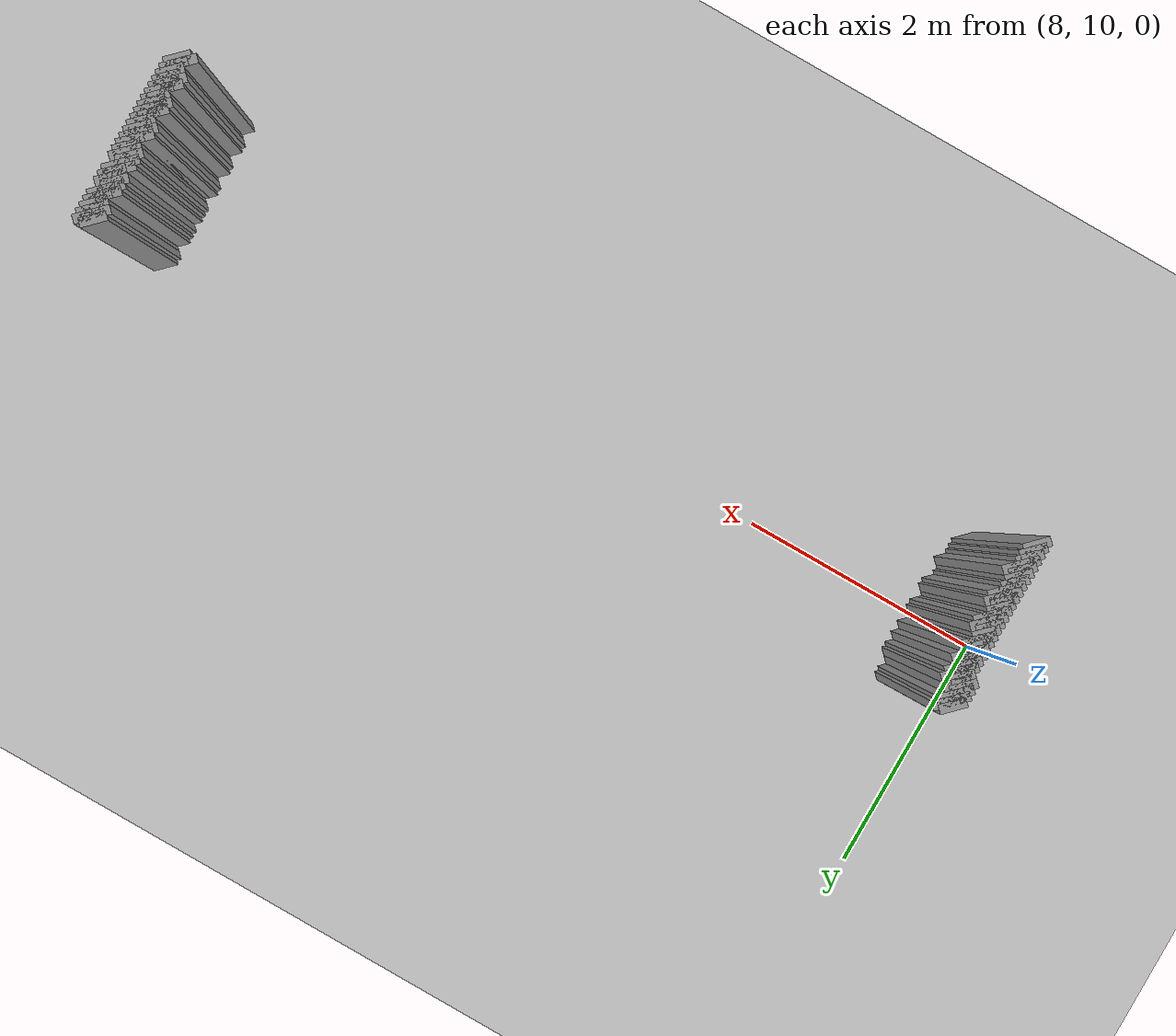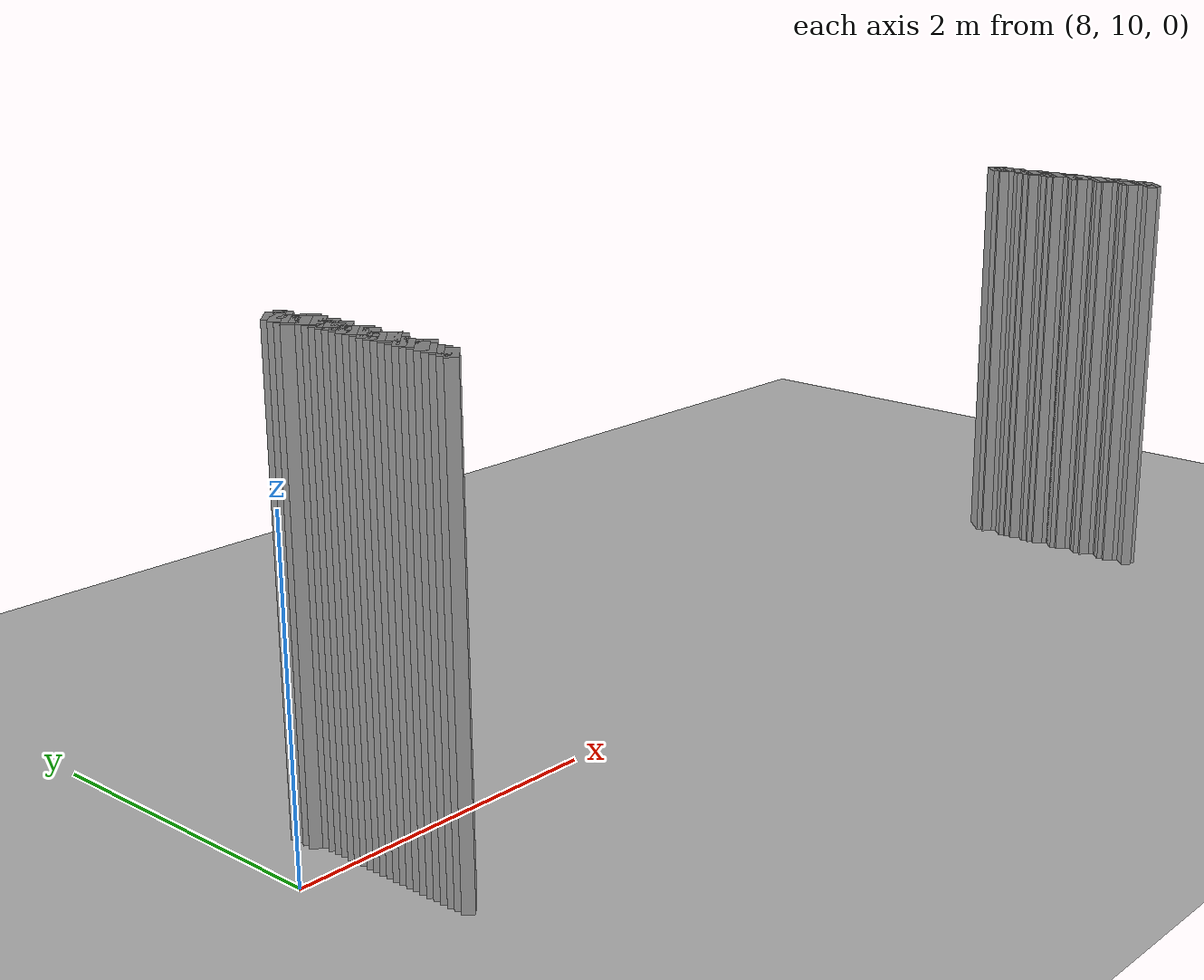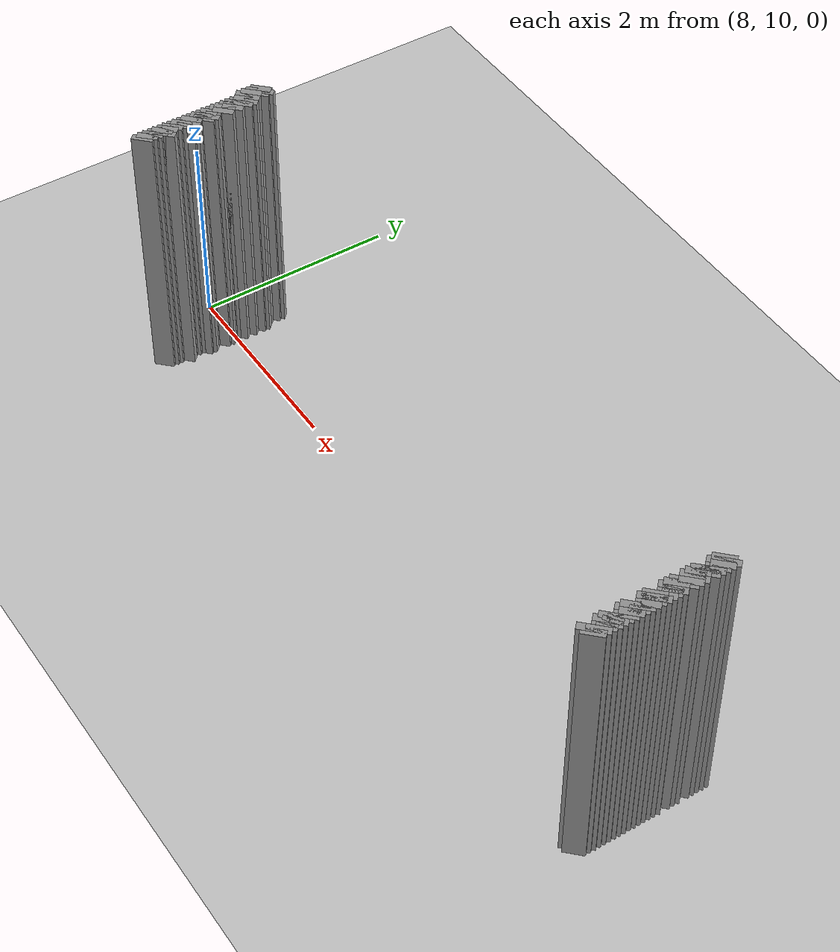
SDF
<sdf version="1.5">
 <world name="default">
  <include><uri>model://ground_plane</uri></include>
  <include><uri>model://sun</uri></include>
  <model name="grey_wall_1012">
   <static>1</static>
   <link name="link">
    <pose>15.2 10.55  1.4 0 0 -0.785398163397</pose>
    <collision name="collision"><geometry><box><size>0.0707106781187 .2  2.8</size></box></geometry></collision>
    <visual name="visual">
     <cast_shadows>0</cast_shadows>
     <geometry><box><size>0.0707106781187 .2  2.8</size></box></geometry>
     <material>
      <script>
       <uri>model://grey_wall/materials/scripts</uri>
       <uri>model://grey_wall/materials/textures</uri>
       <name>vrc/grey_wall</name>
      </script>
     </material>
    </visual>
   </link>
  </model>
  <model name="grey_wall_1013">
   <static>1</static>
   <link name="link">
    <pose>15.25 10.55  1.4 0 0 -0.785398163397</pose>
    <collision name="collision"><geometry><box><size>0.0707106781187 .2  2.8</size></box></geometry></collision>
    <visual name="visual">
     <cast_shadows>0</cast_shadows>
     <geometry><box><size>0.0707106781187 .2  2.8</size></box></geometry>
     <material>
      <script>
       <uri>model://grey_wall/materials/scripts</uri>
       <uri>model://grey_wall/materials/textures</uri>
       <name>vrc/grey_wall</name>
      </script>
     </material>
    </visual>
   </link>
  </model>
  <model name="grey_wall_1014">
   <static>1</static>
   <link name="link">
    <pose>8.4 10.5  1.4 0 0 -0.785398163397</pose>
    <collision name="collision"><geometry><box><size>0.0707106781187 .2  2.8</size></box></geometry></collision>
    <visual name="visual">
     <cast_shadows>0</cast_shadows>
     <geometry><box><size>0.0707106781187 .2  2.8</size></box></geometry>
     <material>
      <script>
       <uri>model://grey_wall/materials/scripts</uri>
       <uri>model://grey_wall/materials/textures</uri>
       <name>vrc/grey_wall</name>
      </script>
     </material>
    </visual>
   </link>
  </model>
  <model name="grey_wall_1015">
   <static>1</static>
   <link name="link">
    <pose>8.45 10.5  1.4 0 0 -0.785398163397</pose>
    <collision name="collision"><geometry><box><size>0.0707106781187 .2  2.8</size></box></geometry></collision>
    <visual name="visual">
     <cast_shadows>0</cast_shadows>
     <geometry><box><size>0.0707106781187 .2  2.8</size></box></geometry>
     <material>
      <script>
       <uri>model://grey_wall/materials/scripts</uri>
       <uri>model://grey_wall/materials/textures</uri>
       <name>vrc/grey_wall</name>
      </script>
     </material>
    </visual>
   </link>
  </model>
  <model name="grey_wall_1016">
   <static>1</static>
   <link name="link">
    <pose>15.2 10.5  1.4 0 0 -0.785398163397</pose>
    <collision name="collision"><geometry><box><size>0.0707106781187 .2  2.8</size></box></geometry></collision>
    <visual name="visual">
     <cast_shadows>0</cast_shadows>
     <geometry><box><size>0.0707106781187 .2  2.8</size></box></geometry>
     <material>
      <script>
       <uri>model://grey_wall/materials/scripts</uri>
       <uri>model://grey_wall/materials/textures</uri>
       <name>vrc/grey_wall</name>
      </script>
     </material>
    </visual>
   </link>
  </model>
  <model name="grey_wall_1017">
   <static>1</static>
   <link name="link">
    <pose>15.25 10.5  1.4 0 0 -0.785398163397</pose>
    <collision name="collision"><geometry><box><size>0.0707106781187 .2  2.8</size></box></geometry></collision>
    <visual name="visual">
     <cast_shadows>0</cast_shadows>
     <geometry><box><size>0.0707106781187 .2  2.8</size></box></geometry>
     <material>
      <script>
       <uri>model://grey_wall/materials/scripts</uri>
       <uri>model://grey_wall/materials/textures</uri>
       <name>vrc/grey_wall</name>
      </script>
     </material>
    </visual>
   </link>
  </model>
  <model name="grey_wall_1018">
   <static>1</static>
   <link name="link">
    <pose>8.4 10.45  1.4 0 0 -0.785398163397</pose>
    <collision name="collision"><geometry><box><size>0.0707106781187 .2  2.8</size></box></geometry></collision>
    <visual name="visual">
     <cast_shadows>0</cast_shadows>
     <geometry><box><size>0.0707106781187 .2  2.8</size></box></geometry>
     <material>
      <script>
       <uri>model://grey_wall/materials/scripts</uri>
       <uri>model://grey_wall/materials/textures</uri>
       <name>vrc/grey_wall</name>
      </script>
     </material>
    </visual>
   </link>
  </model>
  <model name="grey_wall_1019">
   <static>1</static>
   <link name="link">
    <pose>8.45 10.45  1.4 0 0 -0.785398163397</pose>
    <collision name="collision"><geometry><box><size>0.0707106781187 .2  2.8</size></box></geometry></collision>
    <visual name="visual">
     <cast_shadows>0</cast_shadows>
     <geometry><box><size>0.0707106781187 .2  2.8</size></box></geometry>
     <material>
      <script>
       <uri>model://grey_wall/materials/scripts</uri>
       <uri>model://grey_wall/materials/textures</uri>
       <name>vrc/grey_wall</name>
      </script>
     </material>
    </visual>
   </link>
  </model>
  <model name="grey_wall_1020">
   <static>1</static>
   <link name="link">
    <pose>15.25 10.45  1.4 0 0 -0.785398163397</pose>
    <collision name="collision"><geometry><box><size>0.0707106781187 .2  2.8</size></box></geometry></collision>
    <visual name="visual">
     <cast_shadows>0</cast_shadows>
     <geometry><box><size>0.0707106781187 .2  2.8</size></box></geometry>
     <material>
      <script>
       <uri>model://grey_wall/materials/scripts</uri>
       <uri>model://grey_wall/materials/textures</uri>
       <name>vrc/grey_wall</name>
      </script>
     </material>
    </visual>
   </link>
  </model>
  <model name="grey_wall_1021">
   <static>1</static>
   <link name="link">
    <pose>8.4 10.4  1.4 0 0 -0.785398163397</pose>
    <collision name="collision"><geometry><box><size>0.0707106781187 .2  2.8</size></box></geometry></collision>
    <visual name="visual">
     <cast_shadows>0</cast_shadows>
     <geometry><box><size>0.0707106781187 .2  2.8</size></box></geometry>
     <material>
      <script>
       <uri>model://grey_wall/materials/scripts</uri>
       <uri>model://grey_wall/materials/textures</uri>
       <name>vrc/grey_wall</name>
      </script>
     </material>
    </visual>
   </link>
  </model>
  <model name="grey_wall_1022">
   <static>1</static>
   <link name="link">
    <pose>15.25 10.4  1.4 0 0 -0.785398163397</pose>
    <collision name="collision"><geometry><box><size>0.0707106781187 .2  2.8</size></box></geometry></collision>
    <visual name="visual">
     <cast_shadows>0</cast_shadows>
     <geometry><box><size>0.0707106781187 .2  2.8</size></box></geometry>
     <material>
      <script>
       <uri>model://grey_wall/materials/scripts</uri>
       <uri>model://grey_wall/materials/textures</uri>
       <name>vrc/grey_wall</name>
      </script>
     </material>
    </visual>
   </link>
  </model>
  <model name="grey_wall_1023">
   <static>1</static>
   <link name="link">
    <pose>8.4 10.35  1.4 0 0 -0.785398163397</pose>
    <collision name="collision"><geometry><box><size>0.0707106781187 .2  2.8</size></box></geometry></collision>
    <visual name="visual">
     <cast_shadows>0</cast_shadows>
     <geometry><box><size>0.0707106781187 .2  2.8</size></box></geometry>
     <material>
      <script>
       <uri>model://grey_wall/materials/scripts</uri>
       <uri>model://grey_wall/materials/textures</uri>
       <name>vrc/grey_wall</name>
      </script>
     </material>
    </visual>
   </link>
  </model>
  <model name="grey_wall_1024">
   <static>1</static>
   <link name="link">
    <pose>8.45 10.35  1.4 0 0 -0.785398163397</pose>
    <collision name="collision"><geometry><box><size>0.0707106781187 .2  2.8</size></box></geometry></collision>
    <visual name="visual">
     <cast_shadows>0</cast_shadows>
     <geometry><box><size>0.0707106781187 .2  2.8</size></box></geometry>
     <material>
      <script>
       <uri>model://grey_wall/materials/scripts</uri>
       <uri>model://grey_wall/materials/textures</uri>
       <name>vrc/grey_wall</name>
      </script>
     </material>
    </visual>
   </link>
  </model>
  <model name="grey_wall_1025">
   <static>1</static>
   <link name="link">
    <pose>15.2 10.35  1.4 0 0 -0.785398163397</pose>
    <collision name="collision"><geometry><box><size>0.0707106781187 .2  2.8</size></box></geometry></collision>
    <visual name="visual">
     <cast_shadows>0</cast_shadows>
     <geometry><box><size>0.0707106781187 .2  2.8</size></box></geometry>
     <material>
      <script>
       <uri>model://grey_wall/materials/scripts</uri>
       <uri>model://grey_wall/materials/textures</uri>
       <name>vrc/grey_wall</name>
      </script>
     </material>
    </visual>
   </link>
  </model>
  <model name="grey_wall_1026">
   <static>1</static>
   <link name="link">
    <pose>15.25 10.35  1.4 0 0 -0.785398163397</pose>
    <collision name="collision"><geometry><box><size>0.0707106781187 .2  2.8</size></box></geometry></collision>
    <visual name="visual">
     <cast_shadows>0</cast_shadows>
     <geometry><box><size>0.0707106781187 .2  2.8</size></box></geometry>
     <material>
      <script>
       <uri>model://grey_wall/materials/scripts</uri>
       <uri>model://grey_wall/materials/textures</uri>
       <name>vrc/grey_wall</name>
      </script>
     </material>
    </visual>
   </link>
  </model>
  <model name="grey_wall_1027">
   <static>1</static>
   <link name="link">
    <pose>8.45 10.3  1.4 0 0 -0.785398163397</pose>
    <collision name="collision"><geometry><box><size>0.0707106781187 .2  2.8</size></box></geometry></collision>
    <visual name="visual">
     <cast_shadows>0</cast_shadows>
     <geometry><box><size>0.0707106781187 .2  2.8</size></box></geometry>
     <material>
      <script>
       <uri>model://grey_wall/materials/scripts</uri>
       <uri>model://grey_wall/materials/textures</uri>
       <name>vrc/grey_wall</name>
      </script>
     </material>
    </visual>
   </link>
  </model>
  <model name="grey_wall_1028">
   <static>1</static>
   <link name="link">
    <pose>8.5 10.3  1.4 0 0 -0.785398163397</pose>
    <collision name="collision"><geometry><box><size>0.0707106781187 .2  2.8</size></box></geometry></collision>
    <visual name="visual">
     <cast_shadows>0</cast_shadows>
     <geometry><box><size>0.0707106781187 .2  2.8</size></box></geometry>
     <material>
      <script>
       <uri>model://grey_wall/materials/scripts</uri>
       <uri>model://grey_wall/materials/textures</uri>
       <name>vrc/grey_wall</name>
      </script>
     </material>
    </visual>
   </link>
  </model>
  <model name="grey_wall_1029">
   <static>1</static>
   <link name="link">
    <pose>15.2 10.3  1.4 0 0 -0.785398163397</pose>
    <collision name="collision"><geometry><box><size>0.0707106781187 .2  2.8</size></box></geometry></collision>
    <visual name="visual">
     <cast_shadows>0</cast_shadows>
     <geometry><box><size>0.0707106781187 .2  2.8</size></box></geometry>
     <material>
      <script>
       <uri>model://grey_wall/materials/scripts</uri>
       <uri>model://grey_wall/materials/textures</uri>
       <name>vrc/grey_wall</name>
      </script>
     </material>
    </visual>
   </link>
  </model>
  <model name="grey_wall_1030">
   <static>1</static>
   <link name="link">
    <pose>8.45 10.25  1.4 0 0 -0.785398163397</pose>
    <collision name="collision"><geometry><box><size>0.0707106781187 .2  2.8</size></box></geometry></collision>
    <visual name="visual">
     <cast_shadows>0</cast_shadows>
     <geometry><box><size>0.0707106781187 .2  2.8</size></box></geometry>
     <material>
      <script>
       <uri>model://grey_wall/materials/scripts</uri>
       <uri>model://grey_wall/materials/textures</uri>
       <name>vrc/grey_wall</name>
      </script>
     </material>
    </visual>
   </link>
  </model>
  <model name="grey_wall_1031">
   <static>1</static>
   <link name="link">
    <pose>8.5 10.25  1.4 0 0 -0.785398163397</pose>
    <collision name="collision"><geometry><box><size>0.0707106781187 .2  2.8</size></box></geometry></collision>
    <visual name="visual">
     <cast_shadows>0</cast_shadows>
     <geometry><box><size>0.0707106781187 .2  2.8</size></box></geometry>
     <material>
      <script>
       <uri>model://grey_wall/materials/scripts</uri>
       <uri>model://grey_wall/materials/textures</uri>
       <name>vrc/grey_wall</name>
      </script>
     </material>
    </visual>
   </link>
  </model>
  <model name="grey_wall_1032">
   <static>1</static>
   <link name="link">
    <pose>15.2 10.25  1.4 0 0 -0.785398163397</pose>
    <collision name="collision"><geometry><box><size>0.0707106781187 .2  2.8</size></box></geometry></collision>
    <visual name="visual">
     <cast_shadows>0</cast_shadows>
     <geometry><box><size>0.0707106781187 .2  2.8</size></box></geometry>
     <material>
      <script>
       <uri>model://grey_wall/materials/scripts</uri>
       <uri>model://grey_wall/materials/textures</uri>
       <name>vrc/grey_wall</name>
      </script>
     </material>
    </visual>
   </link>
  </model>
  <model name="grey_wall_1033">
   <static>1</static>
   <link name="link">
    <pose>15.25 10.25  1.4 0 0 -0.785398163397</pose>
    <collision name="collision"><geometry><box><size>0.0707106781187 .2  2.8</size></box></geometry></collision>
    <visual name="visual">
     <cast_shadows>0</cast_shadows>
     <geometry><box><size>0.0707106781187 .2  2.8</size></box></geometry>
     <material>
      <script>
       <uri>model://grey_wall/materials/scripts</uri>
       <uri>model://grey_wall/materials/textures</uri>
       <name>vrc/grey_wall</name>
      </script>
     </material>
    </visual>
   </link>
  </model>
  <model name="grey_wall_1034">
   <static>1</static>
   <link name="link">
    <pose>8.45 10.2  1.4 0 0 -0.785398163397</pose>
    <collision name="collision"><geometry><box><size>0.0707106781187 .2  2.8</size></box></geometry></collision>
    <visual name="visual">
     <cast_shadows>0</cast_shadows>
     <geometry><box><size>0.0707106781187 .2  2.8</size></box></geometry>
     <material>
      <script>
       <uri>model://grey_wall/materials/scripts</uri>
       <uri>model://grey_wall/materials/textures</uri>
       <name>vrc/grey_wall</name>
      </script>
     </material>
    </visual>
   </link>
  </model>
  <model name="grey_wall_1035">
   <static>1</static>
   <link name="link">
    <pose>15.25 10.2  1.4 0 0 -0.785398163397</pose>
    <collision name="collision"><geometry><box><size>0.0707106781187 .2  2.8</size></box></geometry></collision>
    <visual name="visual">
     <cast_shadows>0</cast_shadows>
     <geometry><box><size>0.0707106781187 .2  2.8</size></box></geometry>
     <material>
      <script>
       <uri>model://grey_wall/materials/scripts</uri>
       <uri>model://grey_wall/materials/textures</uri>
       <name>vrc/grey_wall</name>
      </script>
     </material>
    </visual>
   </link>
  </model>
  <model name="grey_wall_1036">
   <static>1</static>
   <link name="link">
    <pose>8.45 10.15  1.4 0 0 -0.785398163397</pose>
    <collision name="collision"><geometry><box><size>0.0707106781187 .2  2.8</size></box></geometry></collision>
    <visual name="visual">
     <cast_shadows>0</cast_shadows>
     <geometry><box><size>0.0707106781187 .2  2.8</size></box></geometry>
     <material>
      <script>
       <uri>model://grey_wall/materials/scripts</uri>
       <uri>model://grey_wall/materials/textures</uri>
       <name>vrc/grey_wall</name>
      </script>
     </material>
    </visual>
   </link>
  </model>
  <model name="grey_wall_1037">
   <static>1</static>
   <link name="link">
    <pose>8.5 10.15  1.4 0 0 -0.785398163397</pose>
    <collision name="collision"><geometry><box><size>0.0707106781187 .2  2.8</size></box></geometry></collision>
    <visual name="visual">
     <cast_shadows>0</cast_shadows>
     <geometry><box><size>0.0707106781187 .2  2.8</size></box></geometry>
     <material>
      <script>
       <uri>model://grey_wall/materials/scripts</uri>
       <uri>model://grey_wall/materials/textures</uri>
       <name>vrc/grey_wall</name>
      </script>
     </material>
    </visual>
   </link>
  </model>
  <model name="grey_wall_1038">
   <static>1</static>
   <link name="link">
    <pose>15.2 10.15  1.4 0 0 -0.785398163397</pose>
    <collision name="collision"><geometry><box><size>0.0707106781187 .2  2.8</size></box></geometry></collision>
    <visual name="visual">
     <cast_shadows>0</cast_shadows>
     <geometry><box><size>0.0707106781187 .2  2.8</size></box></geometry>
     <material>
      <script>
       <uri>model://grey_wall/materials/scripts</uri>
       <uri>model://grey_wall/materials/textures</uri>
       <name>vrc/grey_wall</name>
      </script>
     </material>
    </visual>
   </link>
  </model>
  <model name="grey_wall_1039">
   <static>1</static>
   <link name="link">
    <pose>15.25 10.15  1.4 0 0 -0.785398163397</pose>
    <collision name="collision"><geometry><box><size>0.0707106781187 .2  2.8</size></box></geometry></collision>
    <visual name="visual">
     <cast_shadows>0</cast_shadows>
     <geometry><box><size>0.0707106781187 .2  2.8</size></box></geometry>
     <material>
      <script>
       <uri>model://grey_wall/materials/scripts</uri>
       <uri>model://grey_wall/materials/textures</uri>
       <name>vrc/grey_wall</name>
      </script>
     </material>
    </visual>
   </link>
  </model>
  <model name="grey_wall_1040">
   <static>1</static>
   <link name="link">
    <pose>8.45 10.1  1.4 0 0 -0.785398163397</pose>
    <collision name="collision"><geometry><box><size>0.0707106781187 .2  2.8</size></box></geometry></collision>
    <visual name="visual">
     <cast_shadows>0</cast_shadows>
     <geometry><box><size>0.0707106781187 .2  2.8</size></box></geometry>
     <material>
      <script>
       <uri>model://grey_wall/materials/scripts</uri>
       <uri>model://grey_wall/materials/textures</uri>
       <name>vrc/grey_wall</name>
      </script>
     </material>
    </visual>
   </link>
  </model>
  <model name="grey_wall_1041">
   <static>1</static>
   <link name="link">
    <pose>15.2 10.1  1.4 0 0 -0.785398163397</pose>
    <collision name="collision"><geometry><box><size>0.0707106781187 .2  2.8</size></box></geometry></collision>
    <visual name="visual">
     <cast_shadows>0</cast_shadows>
     <geometry><box><size>0.0707106781187 .2  2.8</size></box></geometry>
     <material>
      <script>
       <uri>model://grey_wall/materials/scripts</uri>
       <uri>model://grey_wall/materials/textures</uri>
       <name>vrc/grey_wall</name>
      </script>
     </material>
    </visual>
   </link>
  </model>
  <model name="grey_wall_1042">
   <static>1</static>
   <link name="link">
    <pose>8.45 10.05  1.4 0 0 -0.785398163397</pose>
    <collision name="collision"><geometry><box><size>0.0707106781187 .2  2.8</size></box></geometry></collision>
    <visual name="visual">
     <cast_shadows>0</cast_shadows>
     <geometry><box><size>0.0707106781187 .2  2.8</size></box></geometry>
     <material>
      <script>
       <uri>model://grey_wall/materials/scripts</uri>
       <uri>model://grey_wall/materials/textures</uri>
       <name>vrc/grey_wall</name>
      </script>
     </material>
    </visual>
   </link>
  </model>
  <model name="grey_wall_1043">
   <static>1</static>
   <link name="link">
    <pose>8.5 10.05  1.4 0 0 -0.785398163397</pose>
    <collision name="collision"><geometry><box><size>0.0707106781187 .2  2.8</size></box></geometry></collision>
    <visual name="visual">
     <cast_shadows>0</cast_shadows>
     <geometry><box><size>0.0707106781187 .2  2.8</size></box></geometry>
     <material>
      <script>
       <uri>model://grey_wall/materials/scripts</uri>
       <uri>model://grey_wall/materials/textures</uri>
       <name>vrc/grey_wall</name>
      </script>
     </material>
    </visual>
   </link>
  </model>
  <model name="grey_wall_1044">
   <static>1</static>
   <link name="link">
    <pose>15.2 10.05  1.4 0 0 -0.785398163397</pose>
    <collision name="collision"><geometry><box><size>0.0707106781187 .2  2.8</size></box></geometry></collision>
    <visual name="visual">
     <cast_shadows>0</cast_shadows>
     <geometry><box><size>0.0707106781187 .2  2.8</size></box></geometry>
     <material>
      <script>
       <uri>model://grey_wall/materials/scripts</uri>
       <uri>model://grey_wall/materials/textures</uri>
       <name>vrc/grey_wall</name>
      </script>
     </material>
    </visual>
   </link>
  </model>
  <model name="grey_wall_1045">
   <static>1</static>
   <link name="link">
    <pose>15.25 10.05  1.4 0 0 -0.785398163397</pose>
    <collision name="collision"><geometry><box><size>0.0707106781187 .2  2.8</size></box></geometry></collision>
    <visual name="visual">
     <cast_shadows>0</cast_shadows>
     <geometry><box><size>0.0707106781187 .2  2.8</size></box></geometry>
     <material>
      <script>
       <uri>model://grey_wall/materials/scripts</uri>
       <uri>model://grey_wall/materials/textures</uri>
       <name>vrc/grey_wall</name>
      </script>
     </material>
    </visual>
   </link>
  </model>
  <model name="grey_wall_1046">
   <static>1</static>
   <link name="link">
    <pose>8.45 10.0  1.4 0 0 -0.785398163397</pose>
    <collision name="collision"><geometry><box><size>0.0707106781187 .2  2.8</size></box></geometry></collision>
    <visual name="visual">
     <cast_shadows>0</cast_shadows>
     <geometry><box><size>0.0707106781187 .2  2.8</size></box></geometry>
     <material>
      <script>
       <uri>model://grey_wall/materials/scripts</uri>
       <uri>model://grey_wall/materials/textures</uri>
       <name>vrc/grey_wall</name>
      </script>
     </material>
    </visual>
   </link>
  </model>
  <model name="grey_wall_1047">
   <static>1</static>
   <link name="link">
    <pose>15.25 10.0  1.4 0 0 -0.785398163397</pose>
    <collision name="collision"><geometry><box><size>0.0707106781187 .2  2.8</size></box></geometry></collision>
    <visual name="visual">
     <cast_shadows>0</cast_shadows>
     <geometry><box><size>0.0707106781187 .2  2.8</size></box></geometry>
     <material>
      <script>
       <uri>model://grey_wall/materials/scripts</uri>
       <uri>model://grey_wall/materials/textures</uri>
       <name>vrc/grey_wall</name>
      </script>
     </material>
    </visual>
   </link>
  </model>
  <model name="grey_wall_1048">
   <static>1</static>
   <link name="link">
    <pose>8.45 9.95  1.4 0 0 -0.785398163397</pose>
    <collision name="collision"><geometry><box><size>0.0707106781187 .2  2.8</size></box></geometry></collision>
    <visual name="visual">
     <cast_shadows>0</cast_shadows>
     <geometry><box><size>0.0707106781187 .2  2.8</size></box></geometry>
     <material>
      <script>
       <uri>model://grey_wall/materials/scripts</uri>
       <uri>model://grey_wall/materials/textures</uri>
       <name>vrc/grey_wall</name>
      </script>
     </material>
    </visual>
   </link>
  </model>
  <model name="grey_wall_1049">
   <static>1</static>
   <link name="link">
    <pose>15.25 9.95  1.4 0 0 -0.785398163397</pose>
    <collision name="collision"><geometry><box><size>0.0707106781187 .2  2.8</size></box></geometry></collision>
    <visual name="visual">
     <cast_shadows>0</cast_shadows>
     <geometry><box><size>0.0707106781187 .2  2.8</size></box></geometry>
     <material>
      <script>
       <uri>model://grey_wall/materials/scripts</uri>
       <uri>model://grey_wall/materials/textures</uri>
       <name>vrc/grey_wall</name>
      </script>
     </material>
    </visual>
   </link>
  </model>
  <model name="grey_wall_1050">
   <static>1</static>
   <link name="link">
    <pose>8.45 9.9  1.4 0 0 -0.785398163397</pose>
    <collision name="collision"><geometry><box><size>0.0707106781187 .2  2.8</size></box></geometry></collision>
    <visual name="visual">
     <cast_shadows>0</cast_shadows>
     <geometry><box><size>0.0707106781187 .2  2.8</size></box></geometry>
     <material>
      <script>
       <uri>model://grey_wall/materials/scripts</uri>
       <uri>model://grey_wall/materials/textures</uri>
       <name>vrc/grey_wall</name>
      </script>
     </material>
    </visual>
   </link>
  </model>
  <model name="grey_wall_1051">
   <static>1</static>
   <link name="link">
    <pose>8.5 9.9  1.4 0 0 -0.785398163397</pose>
    <collision name="collision"><geometry><box><size>0.0707106781187 .2  2.8</size></box></geometry></collision>
    <visual name="visual">
     <cast_shadows>0</cast_shadows>
     <geometry><box><size>0.0707106781187 .2  2.8</size></box></geometry>
     <material>
      <script>
       <uri>model://grey_wall/materials/scripts</uri>
       <uri>model://grey_wall/materials/textures</uri>
       <name>vrc/grey_wall</name>
      </script>
     </material>
    </visual>
   </link>
  </model>
  <model name="grey_wall_1052">
   <static>1</static>
   <link name="link">
    <pose>15.2 9.9  1.4 0 0 -0.785398163397</pose>
    <collision name="collision"><geometry><box><size>0.0707106781187 .2  2.8</size></box></geometry></collision>
    <visual name="visual">
     <cast_shadows>0</cast_shadows>
     <geometry><box><size>0.0707106781187 .2  2.8</size></box></geometry>
     <material>
      <script>
       <uri>model://grey_wall/materials/scripts</uri>
       <uri>model://grey_wall/materials/textures</uri>
       <name>vrc/grey_wall</name>
      </script>
     </material>
    </visual>
   </link>
  </model>
  <model name="grey_wall_1053">
   <static>1</static>
   <link name="link">
    <pose>15.25 9.9  1.4 0 0 -0.785398163397</pose>
    <collision name="collision"><geometry><box><size>0.0707106781187 .2  2.8</size></box></geometry></collision>
    <visual name="visual">
     <cast_shadows>0</cast_shadows>
     <geometry><box><size>0.0707106781187 .2  2.8</size></box></geometry>
     <material>
      <script>
       <uri>model://grey_wall/materials/scripts</uri>
       <uri>model://grey_wall/materials/textures</uri>
       <name>vrc/grey_wall</name>
      </script>
     </material>
    </visual>
   </link>
  </model>
  <model name="grey_wall_1054">
   <static>1</static>
   <link name="link">
    <pose>8.45 9.85  1.4 0 0 -0.785398163397</pose>
    <collision name="collision"><geometry><box><size>0.0707106781187 .2  2.8</size></box></geometry></collision>
    <visual name="visual">
     <cast_shadows>0</cast_shadows>
     <geometry><box><size>0.0707106781187 .2  2.8</size></box></geometry>
     <material>
      <script>
       <uri>model://grey_wall/materials/scripts</uri>
       <uri>model://grey_wall/materials/textures</uri>
       <name>vrc/grey_wall</name>
      </script>
     </material>
    </visual>
   </link>
  </model>
  <model name="grey_wall_1055">
   <static>1</static>
   <link name="link">
    <pose>8.5 9.85  1.4 0 0 -0.785398163397</pose>
    <collision name="collision"><geometry><box><size>0.0707106781187 .2  2.8</size></box></geometry></collision>
    <visual name="visual">
     <cast_shadows>0</cast_shadows>
     <geometry><box><size>0.0707106781187 .2  2.8</size></box></geometry>
     <material>
      <script>
       <uri>model://grey_wall/materials/scripts</uri>
       <uri>model://grey_wall/materials/textures</uri>
       <name>vrc/grey_wall</name>
      </script>
     </material>
    </visual>
   </link>
  </model>
  <model name="grey_wall_1056">
   <static>1</static>
   <link name="link">
    <pose>15.2 9.85  1.4 0 0 -0.785398163397</pose>
    <collision name="collision"><geometry><box><size>0.0707106781187 .2  2.8</size></box></geometry></collision>
    <visual name="visual">
     <cast_shadows>0</cast_shadows>
     <geometry><box><size>0.0707106781187 .2  2.8</size></box></geometry>
     <material>
      <script>
       <uri>model://grey_wall/materials/scripts</uri>
       <uri>model://grey_wall/materials/textures</uri>
       <name>vrc/grey_wall</name>
      </script>
     </material>
    </visual>
   </link>
  </model>
  <model name="grey_wall_1057">
   <static>1</static>
   <link name="link">
    <pose>15.25 9.85  1.4 0 0 -0.785398163397</pose>
    <collision name="collision"><geometry><box><size>0.0707106781187 .2  2.8</size></box></geometry></collision>
    <visual name="visual">
     <cast_shadows>0</cast_shadows>
     <geometry><box><size>0.0707106781187 .2  2.8</size></box></geometry>
     <material>
      <script>
       <uri>model://grey_wall/materials/scripts</uri>
       <uri>model://grey_wall/materials/textures</uri>
       <name>vrc/grey_wall</name>
      </script>
     </material>
    </visual>
   </link>
  </model>
  <model name="grey_wall_1058">
   <static>1</static>
   <link name="link">
    <pose>8.45 9.8  1.4 0 0 -0.785398163397</pose>
    <collision name="collision"><geometry><box><size>0.0707106781187 .2  2.8</size></box></geometry></collision>
    <visual name="visual">
     <cast_shadows>0</cast_shadows>
     <geometry><box><size>0.0707106781187 .2  2.8</size></box></geometry>
     <material>
      <script>
       <uri>model://grey_wall/materials/scripts</uri>
       <uri>model://grey_wall/materials/textures</uri>
       <name>vrc/grey_wall</name>
      </script>
     </material>
    </visual>
   </link>
  </model>
  <model name="grey_wall_1059">
   <static>1</static>
   <link name="link">
    <pose>15.25 9.8  1.4 0 0 -0.785398163397</pose>
    <collision name="collision"><geometry><box><size>0.0707106781187 .2  2.8</size></box></geometry></collision>
    <visual name="visual">
     <cast_shadows>0</cast_shadows>
     <geometry><box><size>0.0707106781187 .2  2.8</size></box></geometry>
     <material>
      <script>
       <uri>model://grey_wall/materials/scripts</uri>
       <uri>model://grey_wall/materials/textures</uri>
       <name>vrc/grey_wall</name>
      </script>
     </material>
    </visual>
   </link>
  </model>
  <model name="grey_wall_1060">
   <static>1</static>
   <link name="link">
    <pose>8.45 9.75  1.4 0 0 -0.785398163397</pose>
    <collision name="collision"><geometry><box><size>0.0707106781187 .2  2.8</size></box></geometry></collision>
    <visual name="visual">
     <cast_shadows>0</cast_shadows>
     <geometry><box><size>0.0707106781187 .2  2.8</size></box></geometry>
     <material>
      <script>
       <uri>model://grey_wall/materials/scripts</uri>
       <uri>model://grey_wall/materials/textures</uri>
       <name>vrc/grey_wall</name>
      </script>
     </material>
    </visual>
   </link>
  </model>
  <model name="grey_wall_1061">
   <static>1</static>
   <link name="link">
    <pose>15.25 9.75  1.4 0 0 -0.785398163397</pose>
    <collision name="collision"><geometry><box><size>0.0707106781187 .2  2.8</size></box></geometry></collision>
    <visual name="visual">
     <cast_shadows>0</cast_shadows>
     <geometry><box><size>0.0707106781187 .2  2.8</size></box></geometry>
     <material>
      <script>
       <uri>model://grey_wall/materials/scripts</uri>
       <uri>model://grey_wall/materials/textures</uri>
       <name>vrc/grey_wall</name>
      </script>
     </material>
    </visual>
   </link>
  </model>
  <model name="grey_wall_1062">
   <static>1</static>
   <link name="link">
    <pose>8.45 9.7  1.4 0 0 -0.785398163397</pose>
    <collision name="collision"><geometry><box><size>0.0707106781187 .2  2.8</size></box></geometry></collision>
    <visual name="visual">
     <cast_shadows>0</cast_shadows>
     <geometry><box><size>0.0707106781187 .2  2.8</size></box></geometry>
     <material>
      <script>
       <uri>model://grey_wall/materials/scripts</uri>
       <uri>model://grey_wall/materials/textures</uri>
       <name>vrc/grey_wall</name>
      </script>
     </material>
    </visual>
   </link>
  </model>
  <model name="grey_wall_1063">
   <static>1</static>
   <link name="link">
    <pose>8.5 9.7  1.4 0 0 -0.785398163397</pose>
    <collision name="collision"><geometry><box><size>0.0707106781187 .2  2.8</size></box></geometry></collision>
    <visual name="visual">
     <cast_shadows>0</cast_shadows>
     <geometry><box><size>0.0707106781187 .2  2.8</size></box></geometry>
     <material>
      <script>
       <uri>model://grey_wall/materials/scripts</uri>
       <uri>model://grey_wall/materials/textures</uri>
       <name>vrc/grey_wall</name>
      </script>
     </material>
    </visual>
   </link>
  </model>
  <model name="grey_wall_1064">
   <static>1</static>
   <link name="link">
    <pose>15.2 9.7  1.4 0 0 -0.785398163397</pose>
    <collision name="collision"><geometry><box><size>0.0707106781187 .2  2.8</size></box></geometry></collision>
    <visual name="visual">
     <cast_shadows>0</cast_shadows>
     <geometry><box><size>0.0707106781187 .2  2.8</size></box></geometry>
     <material>
      <script>
       <uri>model://grey_wall/materials/scripts</uri>
       <uri>model://grey_wall/materials/textures</uri>
       <name>vrc/grey_wall</name>
      </script>
     </material>
    </visual>
   </link>
  </model>
  <model name="grey_wall_1065">
   <static>1</static>
   <link name="link">
    <pose>15.25 9.7  1.4 0 0 -0.785398163397</pose>
    <collision name="collision"><geometry><box><size>0.0707106781187 .2  2.8</size></box></geometry></collision>
    <visual name="visual">
     <cast_shadows>0</cast_shadows>
     <geometry><box><size>0.0707106781187 .2  2.8</size></box></geometry>
     <material>
      <script>
       <uri>model://grey_wall/materials/scripts</uri>
       <uri>model://grey_wall/materials/textures</uri>
       <name>vrc/grey_wall</name>
      </script>
     </material>
    </visual>
   </link>
  </model>
  <model name="grey_wall_1066">
   <static>1</static>
   <link name="link">
    <pose>8.45 9.65  1.4 0 0 -0.785398163397</pose>
    <collision name="collision"><geometry><box><size>0.0707106781187 .2  2.8</size></box></geometry></collision>
    <visual name="visual">
     <cast_shadows>0</cast_shadows>
     <geometry><box><size>0.0707106781187 .2  2.8</size></box></geometry>
     <material>
      <script>
       <uri>model://grey_wall/materials/scripts</uri>
       <uri>model://grey_wall/materials/textures</uri>
       <name>vrc/grey_wall</name>
      </script>
     </material>
    </visual>
   </link>
  </model>
  <model name="grey_wall_1067">
   <static>1</static>
   <link name="link">
    <pose>8.5 9.65  1.4 0 0 -0.785398163397</pose>
    <collision name="collision"><geometry><box><size>0.0707106781187 .2  2.8</size></box></geometry></collision>
    <visual name="visual">
     <cast_shadows>0</cast_shadows>
     <geometry><box><size>0.0707106781187 .2  2.8</size></box></geometry>
     <material>
      <script>
       <uri>model://grey_wall/materials/scripts</uri>
       <uri>model://grey_wall/materials/textures</uri>
       <name>vrc/grey_wall</name>
      </script>
     </material>
    </visual>
   </link>
  </model>
  <model name="grey_wall_1068">
   <static>1</static>
   <link name="link">
    <pose>15.2 9.65  1.4 0 0 -0.785398163397</pose>
    <collision name="collision"><geometry><box><size>0.0707106781187 .2  2.8</size></box></geometry></collision>
    <visual name="visual">
     <cast_shadows>0</cast_shadows>
     <geometry><box><size>0.0707106781187 .2  2.8</size></box></geometry>
     <material>
      <script>
       <uri>model://grey_wall/materials/scripts</uri>
       <uri>model://grey_wall/materials/textures</uri>
       <name>vrc/grey_wall</name>
      </script>
     </material>
    </visual>
   </link>
  </model>
  <model name="grey_wall_1069">
   <static>1</static>
   <link name="link">
    <pose>15.25 9.65  1.4 0 0 -0.785398163397</pose>
    <collision name="collision"><geometry><box><size>0.0707106781187 .2  2.8</size></box></geometry></collision>
    <visual name="visual">
     <cast_shadows>0</cast_shadows>
     <geometry><box><size>0.0707106781187 .2  2.8</size></box></geometry>
     <material>
      <script>
       <uri>model://grey_wall/materials/scripts</uri>
       <uri>model://grey_wall/materials/textures</uri>
       <name>vrc/grey_wall</name>
      </script>
     </material>
    </visual>
   </link>
  </model>
  <model name="grey_wall_1070">
   <static>1</static>
   <link name="link">
    <pose>8.45 9.6  1.4 0 0 -0.785398163397</pose>
    <collision name="collision"><geometry><box><size>0.0707106781187 .2  2.8</size></box></geometry></collision>
    <visual name="visual">
     <cast_shadows>0</cast_shadows>
     <geometry><box><size>0.0707106781187 .2  2.8</size></box></geometry>
     <material>
      <script>
       <uri>model://grey_wall/materials/scripts</uri>
       <uri>model://grey_wall/materials/textures</uri>
       <name>vrc/grey_wall</name>
      </script>
     </material>
    </visual>
   </link>
  </model>
  <model name="grey_wall_1071">
   <static>1</static>
   <link name="link">
    <pose>15.25 9.6  1.4 0 0 -0.785398163397</pose>
    <collision name="collision"><geometry><box><size>0.0707106781187 .2  2.8</size></box></geometry></collision>
    <visual name="visual">
     <cast_shadows>0</cast_shadows>
     <geometry><box><size>0.0707106781187 .2  2.8</size></box></geometry>
     <material>
      <script>
       <uri>model://grey_wall/materials/scripts</uri>
       <uri>model://grey_wall/materials/textures</uri>
       <name>vrc/grey_wall</name>
      </script>
     </material>
    </visual>
   </link>
  </model>
  <model name="grey_wall_1072">
   <static>1</static>
   <link name="link">
    <pose>8.45 9.55  1.4 0 0 -0.785398163397</pose>
    <collision name="collision"><geometry><box><size>0.0707106781187 .2  2.8</size></box></geometry></collision>
    <visual name="visual">
     <cast_shadows>0</cast_shadows>
     <geometry><box><size>0.0707106781187 .2  2.8</size></box></geometry>
     <material>
      <script>
       <uri>model://grey_wall/materials/scripts</uri>
       <uri>model://grey_wall/materials/textures</uri>
       <name>vrc/grey_wall</name>
      </script>
     </material>
    </visual>
   </link>
  </model>
  <model name="grey_wall_1073">
   <static>1</static>
   <link name="link">
    <pose>15.25 9.55  1.4 0 0 -0.785398163397</pose>
    <collision name="collision"><geometry><box><size>0.0707106781187 .2  2.8</size></box></geometry></collision>
    <visual name="visual">
     <cast_shadows>0</cast_shadows>
     <geometry><box><size>0.0707106781187 .2  2.8</size></box></geometry>
     <material>
      <script>
       <uri>model://grey_wall/materials/scripts</uri>
       <uri>model://grey_wall/materials/textures</uri>
       <name>vrc/grey_wall</name>
      </script>
     </material>
    </visual>
   </link>
  </model>
  <model name="grey_wall_1074">
   <static>1</static>
   <link name="link">
    <pose>8.45 9.5  1.4 0 0 -0.785398163397</pose>
    <collision name="collision"><geometry><box><size>0.0707106781187 .2  2.8</size></box></geometry></collision>
    <visual name="visual">
     <cast_shadows>0</cast_shadows>
     <geometry><box><size>0.0707106781187 .2  2.8</size></box></geometry>
     <material>
      <script>
       <uri>model://grey_wall/materials/scripts</uri>
       <uri>model://grey_wall/materials/textures</uri>
       <name>vrc/grey_wall</name>
      </script>
     </material>
    </visual>
   </link>
  </model>
  <model name="grey_wall_1075">
   <static>1</static>
   <link name="link">
    <pose>15.2 9.5  1.4 0 0 -0.785398163397</pose>
    <collision name="collision"><geometry><box><size>0.0707106781187 .2  2.8</size></box></geometry></collision>
    <visual name="visual">
     <cast_shadows>0</cast_shadows>
     <geometry><box><size>0.0707106781187 .2  2.8</size></box></geometry>
     <material>
      <script>
       <uri>model://grey_wall/materials/scripts</uri>
       <uri>model://grey_wall/materials/textures</uri>
       <name>vrc/grey_wall</name>
      </script>
     </material>
    </visual>
   </link>
  </model>
  <model name="grey_wall_1076">
   <static>1</static>
   <link name="link">
    <pose>15.25 9.5  1.4 0 0 -0.785398163397</pose>
    <collision name="collision"><geometry><box><size>0.0707106781187 .2  2.8</size></box></geometry></collision>
    <visual name="visual">
     <cast_shadows>0</cast_shadows>
     <geometry><box><size>0.0707106781187 .2  2.8</size></box></geometry>
     <material>
      <script>
       <uri>model://grey_wall/materials/scripts</uri>
       <uri>model://grey_wall/materials/textures</uri>
       <name>vrc/grey_wall</name>
      </script>
     </material>
    </visual>
   </link>
  </model>
  <model name="grey_wall_1077">
   <static>1</static>
   <link name="link">
    <pose>8.45 9.45  1.4 0 0 -0.785398163397</pose>
    <collision name="collision"><geometry><box><size>0.0707106781187 .2  2.8</size></box></geometry></collision>
    <visual name="visual">
     <cast_shadows>0</cast_shadows>
     <geometry><box><size>0.0707106781187 .2  2.8</size></box></geometry>
     <material>
      <script>
       <uri>model://grey_wall/materials/scripts</uri>
       <uri>model://grey_wall/materials/textures</uri>
       <name>vrc/grey_wall</name>
      </script>
     </material>
    </visual>
   </link>
  </model>
  <model name="grey_wall_1078">
   <static>1</static>
   <link name="link">
    <pose>8.5 9.45  1.4 0 0 -0.785398163397</pose>
    <collision name="collision"><geometry><box><size>0.0707106781187 .2  2.8</size></box></geometry></collision>
    <visual name="visual">
     <cast_shadows>0</cast_shadows>
     <geometry><box><size>0.0707106781187 .2  2.8</size></box></geometry>
     <material>
      <script>
       <uri>model://grey_wall/materials/scripts</uri>
       <uri>model://grey_wall/materials/textures</uri>
       <name>vrc/grey_wall</name>
      </script>
     </material>
    </visual>
   </link>
  </model>
  <model name="grey_wall_1079">
   <static>1</static>
   <link name="link">
    <pose>15.2 9.45  1.4 0 0 -0.785398163397</pose>
    <collision name="collision"><geometry><box><size>0.0707106781187 .2  2.8</size></box></geometry></collision>
    <visual name="visual">
     <cast_shadows>0</cast_shadows>
     <geometry><box><size>0.0707106781187 .2  2.8</size></box></geometry>
     <material>
      <script>
       <uri>model://grey_wall/materials/scripts</uri>
       <uri>model://grey_wall/materials/textures</uri>
       <name>vrc/grey_wall</name>
      </script>
     </material>
    </visual>
   </link>
  </model>
  <model name="grey_wall_1080">
   <static>1</static>
   <link name="link">
    <pose>15.25 9.45  1.4 0 0 -0.785398163397</pose>
    <collision name="collision"><geometry><box><size>0.0707106781187 .2  2.8</size></box></geometry></collision>
    <visual name="visual">
     <cast_shadows>0</cast_shadows>
     <geometry><box><size>0.0707106781187 .2  2.8</size></box></geometry>
     <material>
      <script>
       <uri>model://grey_wall/materials/scripts</uri>
       <uri>model://grey_wall/materials/textures</uri>
       <name>vrc/grey_wall</name>
      </script>
     </material>
    </visual>
   </link>
  </model>
  <model name="grey_wall_1081">
   <static>1</static>
   <link name="link">
    <pose>8.45 9.4  1.4 0 0 -0.785398163397</pose>
    <collision name="collision"><geometry><box><size>0.0707106781187 .2  2.8</size></box></geometry></collision>
    <visual name="visual">
     <cast_shadows>0</cast_shadows>
     <geometry><box><size>0.0707106781187 .2  2.8</size></box></geometry>
     <material>
      <script>
       <uri>model://grey_wall/materials/scripts</uri>
       <uri>model://grey_wall/materials/textures</uri>
       <name>vrc/grey_wall</name>
      </script>
     </material>
    </visual>
   </link>
  </model>
  <model name="grey_wall_1082">
   <static>1</static>
   <link name="link">
    <pose>15.25 9.4  1.4 0 0 -0.785398163397</pose>
    <collision name="collision"><geometry><box><size>0.0707106781187 .2  2.8</size></box></geometry></collision>
    <visual name="visual">
     <cast_shadows>0</cast_shadows>
     <geometry><box><size>0.0707106781187 .2  2.8</size></box></geometry>
     <material>
      <script>
       <uri>model://grey_wall/materials/scripts</uri>
       <uri>model://grey_wall/materials/textures</uri>
       <name>vrc/grey_wall</name>
      </script>
     </material>
    </visual>
   </link>
  </model>
  <model name="grey_wall_1083">
   <static>1</static>
   <link name="link">
    <pose>8.45 9.35  1.4 0 0 -0.785398163397</pose>
    <collision name="collision"><geometry><box><size>0.0707106781187 .2  2.8</size></box></geometry></collision>
    <visual name="visual">
     <cast_shadows>0</cast_shadows>
     <geometry><box><size>0.0707106781187 .2  2.8</size></box></geometry>
     <material>
      <script>
       <uri>model://grey_wall/materials/scripts</uri>
       <uri>model://grey_wall/materials/textures</uri>
       <name>vrc/grey_wall</name>
      </script>
     </material>
    </visual>
   </link>
  </model>
  <model name="grey_wall_1084">
   <static>1</static>
   <link name="link">
    <pose>15.25 9.35  1.4 0 0 -0.785398163397</pose>
    <collision name="collision"><geometry><box><size>0.0707106781187 .2  2.8</size></box></geometry></collision>
    <visual name="visual">
     <cast_shadows>0</cast_shadows>
     <geometry><box><size>0.0707106781187 .2  2.8</size></box></geometry>
     <material>
      <script>
       <uri>model://grey_wall/materials/scripts</uri>
       <uri>model://grey_wall/materials/textures</uri>
       <name>vrc/grey_wall</name>
      </script>
     </material>
    </visual>
   </link>
  </model>
  <model name="grey_wall_1085">
   <static>1</static>
   <link name="link">
    <pose>8.45 9.3  1.4 0 0 -0.785398163397</pose>
    <collision name="collision"><geometry><box><size>0.0707106781187 .2  2.8</size></box></geometry></collision>
    <visual name="visual">
     <cast_shadows>0</cast_shadows>
     <geometry><box><size>0.0707106781187 .2  2.8</size></box></geometry>
     <material>
      <script>
       <uri>model://grey_wall/materials/scripts</uri>
       <uri>model://grey_wall/materials/textures</uri>
       <name>vrc/grey_wall</name>
      </script>
     </material>
    </visual>
   </link>
  </model>
  <model name="grey_wall_1086">
   <static>1</static>
   <link name="link">
    <pose>15.2 9.3  1.4 0 0 -0.785398163397</pose>
    <collision name="collision"><geometry><box><size>0.0707106781187 .2  2.8</size></box></geometry></collision>
    <visual name="visual">
     <cast_shadows>0</cast_shadows>
     <geometry><box><size>0.0707106781187 .2  2.8</size></box></geometry>
     <material>
      <script>
       <uri>model://grey_wall/materials/scripts</uri>
       <uri>model://grey_wall/materials/textures</uri>
       <name>vrc/grey_wall</name>
      </script>
     </material>
    </visual>
   </link>
  </model>
  <model name="grey_wall_1087">
   <static>1</static>
   <link name="link">
    <pose>15.25 9.3  1.4 0 0 -0.785398163397</pose>
    <collision name="collision"><geometry><box><size>0.0707106781187 .2  2.8</size></box></geometry></collision>
    <visual name="visual">
     <cast_shadows>0</cast_shadows>
     <geometry><box><size>0.0707106781187 .2  2.8</size></box></geometry>
     <material>
      <script>
       <uri>model://grey_wall/materials/scripts</uri>
       <uri>model://grey_wall/materials/textures</uri>
       <name>vrc/grey_wall</name>
      </script>
     </material>
    </visual>
   </link>
  </model>
  <model name="grey_wall_1088">
   <static>1</static>
   <link name="link">
    <pose>8.45 9.25  1.4 0 0 -0.785398163397</pose>
    <collision name="collision"><geometry><box><size>0.0707106781187 .2  2.8</size></box></geometry></collision>
    <visual name="visual">
     <cast_shadows>0</cast_shadows>
     <geometry><box><size>0.0707106781187 .2  2.8</size></box></geometry>
     <material>
      <script>
       <uri>model://grey_wall/materials/scripts</uri>
       <uri>model://grey_wall/materials/textures</uri>
       <name>vrc/grey_wall</name>
      </script>
     </material>
    </visual>
   </link>
  </model>
 </world>
</sdf>
